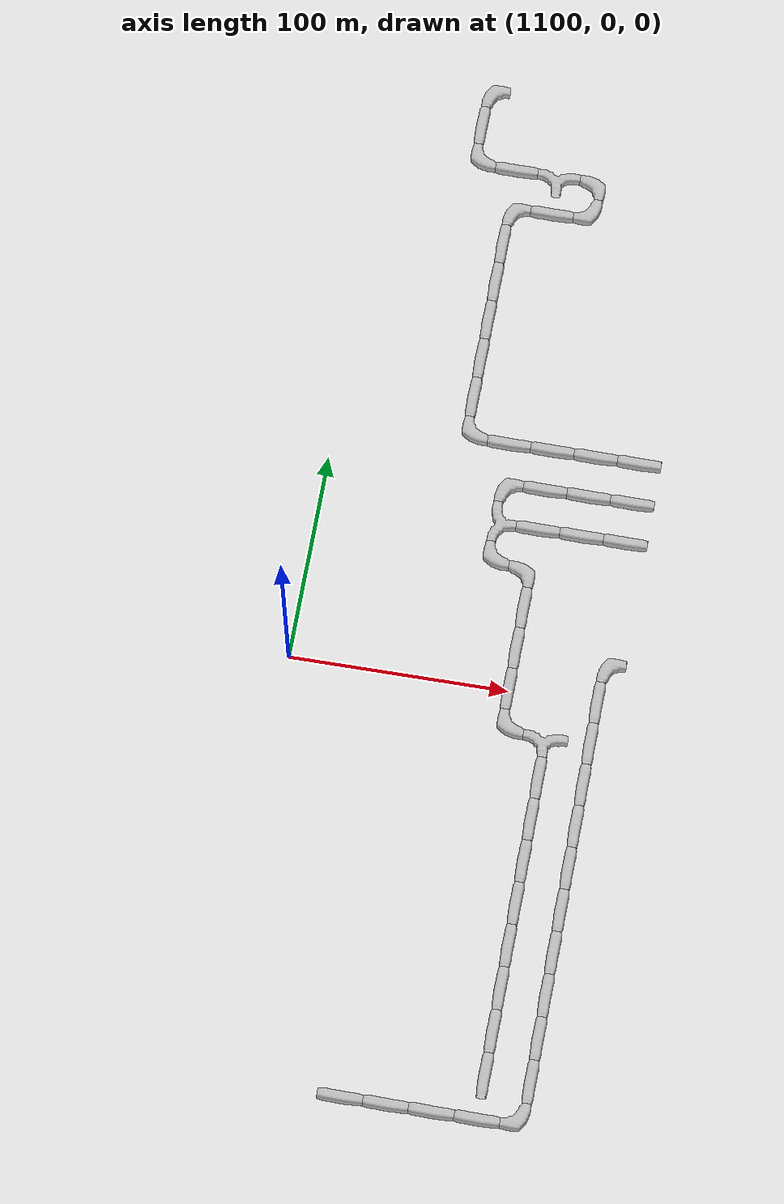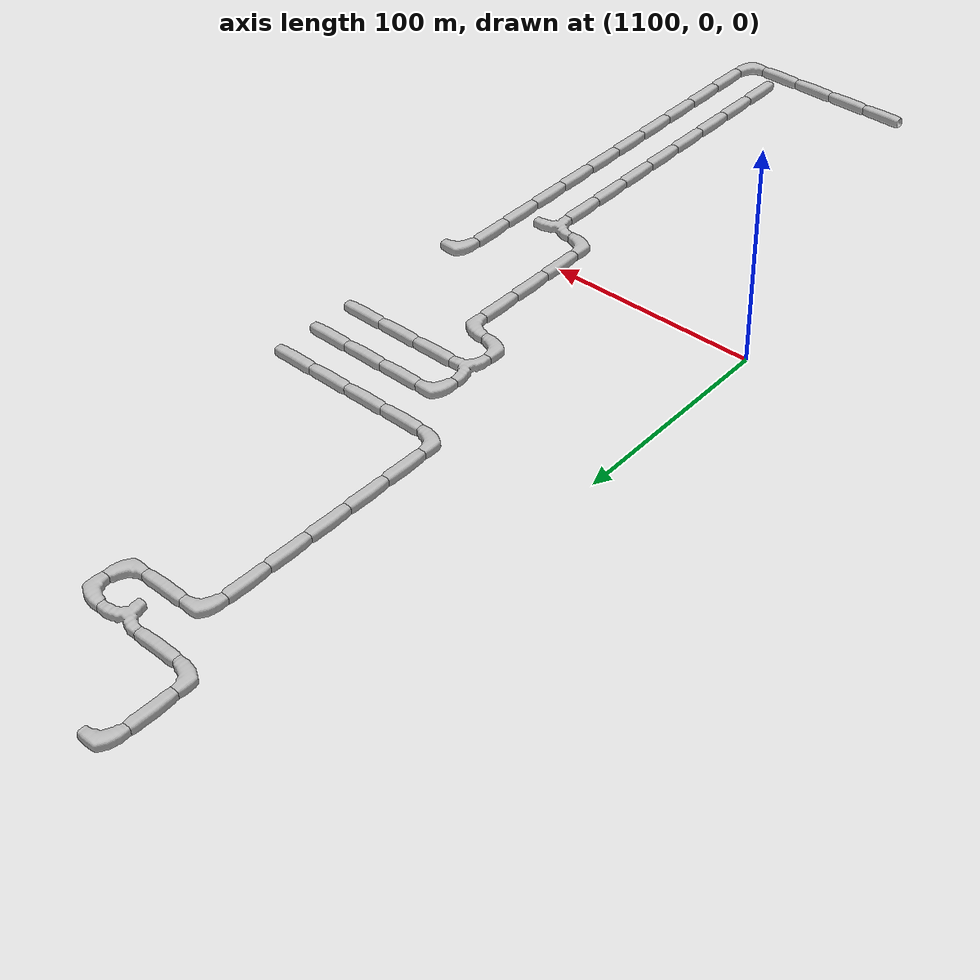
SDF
<sdf version="1.6">
 <world name="cave_32000_16">
  <include>
   <static>true</static>
   <name>cave_58_-10</name>
   <pose>1160 -200 0 0 0 1.5707963267948966</pose>
   <uri>model://cave_straight_20m</uri>
  </include>
  <include>
   <static>true</static>
   <name>cave_59_-10</name>
   <pose>1180 -200 0 0 0 1.5707963267948966</pose>
   <uri>model://cave_straight_20m</uri>
  </include>
  <include>
   <static>true</static>
   <name>cave_60_-10</name>
   <pose>1200 -200 0 0 0 1.5707963267948966</pose>
   <uri>model://cave_straight_20m</uri>
  </include>
  <include>
   <static>true</static>
   <name>cave_61_-10</name>
   <pose>1220 -200 0 0 0 1.5707963267948966</pose>
   <uri>model://cave_straight_20m</uri>
  </include>
  <include>
   <static>true</static>
   <name>cave_62_-10</name>
   <pose>1240 -200 0 0 0 1.5707963267948966</pose>
   <uri>model://cave_L_20m</uri>
  </include>
  <include>
   <static>true</static>
   <name>cave_62_-9</name>
   <pose>1240 -180 0 0 0 0.0</pose>
   <uri>model://cave_straight_20m</uri>
  </include>
  <include>
   <static>true</static>
   <name>cave_62_-8</name>
   <pose>1240 -160 0 0 0 0.0</pose>
   <uri>model://cave_straight_20m</uri>
  </include>
  <include>
   <static>true</static>
   <name>cave_62_-7</name>
   <pose>1240 -140 0 0 0 0.0</pose>
   <uri>model://cave_straight_20m</uri>
  </include>
  <include>
   <static>true</static>
   <name>cave_62_-6</name>
   <pose>1240 -120 0 0 0 0.0</pose>
   <uri>model://cave_straight_20m</uri>
  </include>
  <include>
   <static>true</static>
   <name>cave_62_-5</name>
   <pose>1240 -100 0 0 0 0.0</pose>
   <uri>model://cave_straight_20m</uri>
  </include>
  <include>
   <static>true</static>
   <name>cave_62_-4</name>
   <pose>1240 -80 0 0 0 0.0</pose>
   <uri>model://cave_straight_20m</uri>
  </include>
  <include>
   <static>true</static>
   <name>cave_62_-3</name>
   <pose>1240 -60 0 0 0 0.0</pose>
   <uri>model://cave_straight_20m</uri>
  </include>
  <include>
   <static>true</static>
   <name>cave_62_-2</name>
   <pose>1240 -40 0 0 0 0.0</pose>
   <uri>model://cave_straight_20m</uri>
  </include>
  <include>
   <static>true</static>
   <name>cave_62_-1</name>
   <pose>1240 -20 0 0 0 0.0</pose>
   <uri>model://cave_straight_20m</uri>
  </include>
  <include>
   <static>true</static>
   <name>cave_62_0</name>
   <pose>1240 0 0 0 0 0.0</pose>
   <uri>model://cave_straight_20m</uri>
  </include>
  <include>
   <static>true</static>
   <name>cave_62_1</name>
   <pose>1240 20 0 0 0 -1.5707963267948966</pose>
   <uri>model://cave_L_20m</uri>
  </include>
  <include>
   <static>true</static>
   <name>cave_62_4</name>
   <pose>1240 80 0 0 0 1.5707963267948966</pose>
   <uri>model://cave_straight_20m</uri>
  </include>
  <include>
   <static>true</static>
   <name>cave_61_4</name>
   <pose>1220 80 0 0 0 1.5707963267948966</pose>
   <uri>model://cave_straight_20m</uri>
  </include>
  <include>
   <static>true</static>
   <name>cave_60_4</name>
   <pose>1200 80 0 0 0 1.5707963267948966</pose>
   <uri>model://cave_straight_20m</uri>
  </include>
  <include>
   <static>true</static>
   <name>cave_59_4</name>
   <pose>1180 80 0 0 0 -1.5707963267948966</pose>
   <uri>model://cave_3way_20m</uri>
  </include>
  <include>
   <static>true</static>
   <name>cave_59_3</name>
   <pose>1180 60 0 0 0 0.0</pose>
   <uri>model://cave_L_20m</uri>
  </include>
  <include>
   <static>true</static>
   <name>cave_60_3</name>
   <pose>1200 60 0 0 0 3.141592653589793</pose>
   <uri>model://cave_L_20m</uri>
  </include>
  <include>
   <static>true</static>
   <name>cave_60_2</name>
   <pose>1200 40 0 0 0 0.0</pose>
   <uri>model://cave_straight_20m</uri>
  </include>
  <include>
   <static>true</static>
   <name>cave_60_1</name>
   <pose>1200 20 0 0 0 0.0</pose>
   <uri>model://cave_straight_20m</uri>
  </include>
  <include>
   <static>true</static>
   <name>cave_60_0</name>
   <pose>1200 0 0 0 0 0.0</pose>
   <uri>model://cave_straight_20m</uri>
  </include>
  <include>
   <static>true</static>
   <name>cave_60_-1</name>
   <pose>1200 -20 0 0 0 0.0</pose>
   <uri>model://cave_L_20m</uri>
  </include>
  <include>
   <static>true</static>
   <name>cave_61_-1</name>
   <pose>1220 -20 0 0 0 3.141592653589793</pose>
   <uri>model://cave_3way_20m</uri>
  </include>
  <include>
   <static>true</static>
   <name>cave_61_-2</name>
   <pose>1220 -40 0 0 0 0.0</pose>
   <uri>model://cave_straight_20m</uri>
  </include>
  <include>
   <static>true</static>
   <name>cave_61_-3</name>
   <pose>1220 -60 0 0 0 0.0</pose>
   <uri>model://cave_straight_20m</uri>
  </include>
  <include>
   <static>true</static>
   <name>cave_61_-4</name>
   <pose>1220 -80 0 0 0 0.0</pose>
   <uri>model://cave_straight_20m</uri>
  </include>
  <include>
   <static>true</static>
   <name>cave_61_-5</name>
   <pose>1220 -100 0 0 0 0.0</pose>
   <uri>model://cave_straight_20m</uri>
  </include>
  <include>
   <static>true</static>
   <name>cave_61_-6</name>
   <pose>1220 -120 0 0 0 0.0</pose>
   <uri>model://cave_straight_20m</uri>
  </include>
  <include>
   <static>true</static>
   <name>cave_61_-7</name>
   <pose>1220 -140 0 0 0 0.0</pose>
   <uri>model://cave_straight_20m</uri>
  </include>
  <include>
   <static>true</static>
   <name>cave_61_-8</name>
   <pose>1220 -160 0 0 0 0.0</pose>
   <uri>model://cave_straight_20m</uri>
  </include>
  <include>
   <static>true</static>
   <name>cave_61_-9</name>
   <pose>1220 -180 0 0 0 0.0</pose>
   <uri>model://cave_straight_20m</uri>
  </include>
  <include>
   <static>true</static>
   <name>cave_59_5</name>
   <pose>1180 100 0 0 0 -1.5707963267948966</pose>
   <uri>model://cave_L_20m</uri>
  </include>
  <include>
   <static>true</static>
   <name>cave_60_5</name>
   <pose>1200 100 0 0 0 1.5707963267948966</pose>
   <uri>model://cave_straight_20m</uri>
  </include>
  <include>
   <static>true</static>
   <name>cave_61_5</name>
   <pose>1220 100 0 0 0 1.5707963267948966</pose>
   <uri>model://cave_straight_20m</uri>
  </include>
  <include>
   <static>true</static>
   <name>cave_62_5</name>
   <pose>1240 100 0 0 0 1.5707963267948966</pose>
   <uri>model://cave_straight_20m</uri>
  </include>
  <include>
   <static>true</static>
   <name>cave_62_6</name>
   <pose>1240 120 0 0 0 1.5707963267948966</pose>
   <uri>model://cave_straight_20m</uri>
  </include>
  <include>
   <static>true</static>
   <name>cave_61_6</name>
   <pose>1220 120 0 0 0 1.5707963267948966</pose>
   <uri>model://cave_straight_20m</uri>
  </include>
  <include>
   <static>true</static>
   <name>cave_60_6</name>
   <pose>1200 120 0 0 0 1.5707963267948966</pose>
   <uri>model://cave_straight_20m</uri>
  </include>
  <include>
   <static>true</static>
   <name>cave_59_6</name>
   <pose>1180 120 0 0 0 1.5707963267948966</pose>
   <uri>model://cave_straight_20m</uri>
  </include>
  <include>
   <static>true</static>
   <name>cave_58_6</name>
   <pose>1160 120 0 0 0 0.0</pose>
   <uri>model://cave_L_20m</uri>
  </include>
  <include>
   <static>true</static>
   <name>cave_58_7</name>
   <pose>1160 140 0 0 0 0.0</pose>
   <uri>model://cave_straight_20m</uri>
  </include>
  <include>
   <static>true</static>
   <name>cave_58_8</name>
   <pose>1160 160 0 0 0 0.0</pose>
   <uri>model://cave_straight_20m</uri>
  </include>
  <include>
   <static>true</static>
   <name>cave_58_9</name>
   <pose>1160 180 0 0 0 0.0</pose>
   <uri>model://cave_straight_20m</uri>
  </include>
  <include>
   <static>true</static>
   <name>cave_58_10</name>
   <pose>1160 200 0 0 0 0.0</pose>
   <uri>model://cave_straight_20m</uri>
  </include>
  <include>
   <static>true</static>
   <name>cave_58_11</name>
   <pose>1160 220 0 0 0 0.0</pose>
   <uri>model://cave_straight_20m</uri>
  </include>
  <include>
   <static>true</static>
   <name>cave_58_12</name>
   <pose>1160 240 0 0 0 -1.5707963267948966</pose>
   <uri>model://cave_L_20m</uri>
  </include>
  <include>
   <static>true</static>
   <name>cave_59_12</name>
   <pose>1180 240 0 0 0 1.5707963267948966</pose>
   <uri>model://cave_straight_20m</uri>
  </include>
  <include>
   <static>true</static>
   <name>cave_60_12</name>
   <pose>1200 240 0 0 0 1.5707963267948966</pose>
   <uri>model://cave_L_20m</uri>
  </include>
  <include>
   <static>true</static>
   <name>cave_60_13</name>
   <pose>1200 260 0 0 0 3.141592653589793</pose>
   <uri>model://cave_L_20m</uri>
  </include>
  <include>
   <static>true</static>
   <name>cave_59_13</name>
   <pose>1180 260 0 0 0 3.141592653589793</pose>
   <uri>model://cave_3way_20m</uri>
  </include>
  <include>
   <static>true</static>
   <name>cave_58_13</name>
   <pose>1160 260 0 0 0 1.5707963267948966</pose>
   <uri>model://cave_straight_20m</uri>
  </include>
  <include>
   <static>true</static>
   <name>cave_57_13</name>
   <pose>1140 260 0 0 0 0.0</pose>
   <uri>model://cave_L_20m</uri>
  </include>
  <include>
   <static>true</static>
   <name>cave_57_14</name>
   <pose>1140 280 0 0 0 0.0</pose>
   <uri>model://cave_straight_20m</uri>
  </include>
  <include>
   <static>true</static>
   <name>cave_57_15</name>
   <pose>1140 300 0 0 0 -1.5707963267948966</pose>
   <uri>model://cave_L_20m</uri>
  </include>
 </world>
</sdf>
